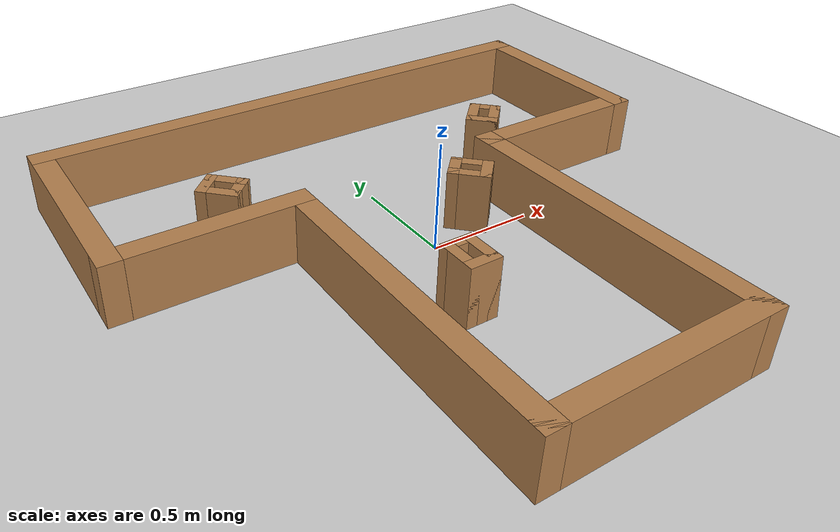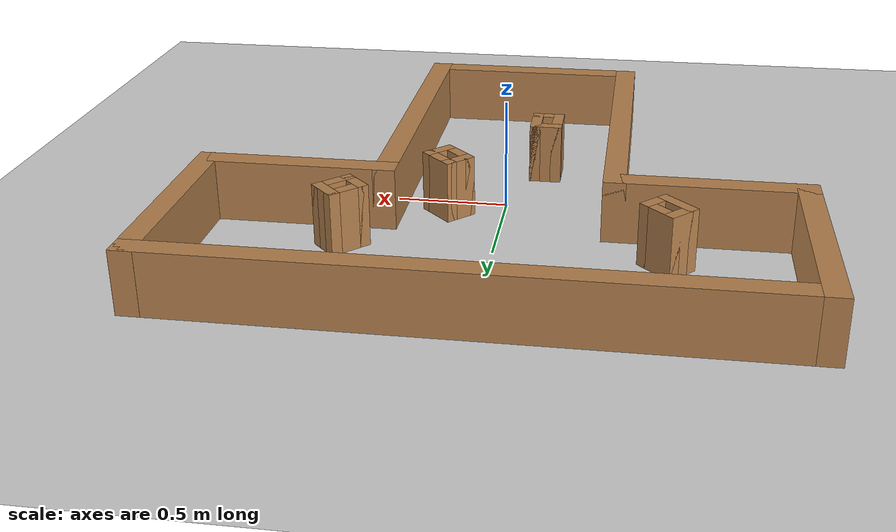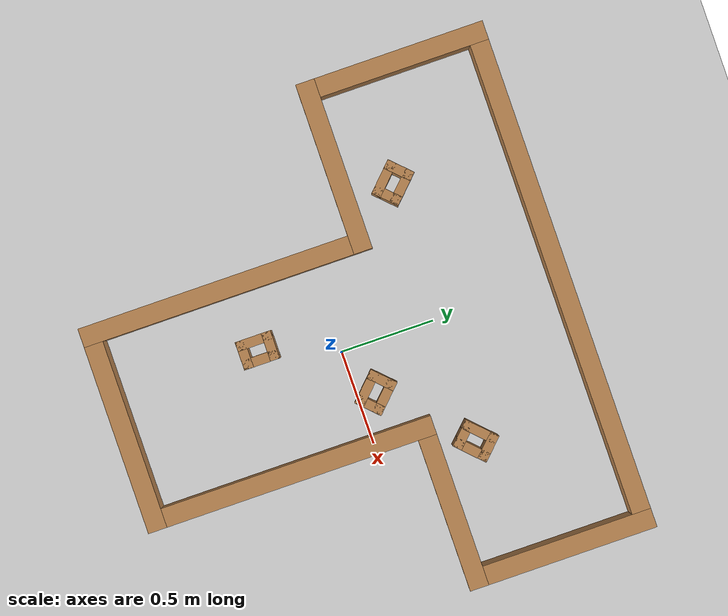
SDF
<sdf version="1.6">
 <world name="default">
  <physics type="ode">
   <real_time_update_rate>0.0</real_time_update_rate>
   <max_step_size>0.003</max_step_size>
   <ode>
    <solver>
     <type>quick</type>
     <iters>150</iters>
     <precon_iters>0</precon_iters>
     <sor>1.400000</sor>
     <use_dynamic_moi_rescaling>1</use_dynamic_moi_rescaling>
    </solver>
    <constraints>
     <cfm>0.00001</cfm>
     <erp>0.2</erp>
     <contact_max_correcting_vel>2000.000000</contact_max_correcting_vel>
     <contact_surface_layer>0.01000</contact_surface_layer>
    </constraints>
   </ode>
  </physics>
  <light name="sun" type="directional">
   <pose>0 0 10 0 -0 0</pose>
   <diffuse>0.8 0.8 0.8 1</diffuse>
   <specular>0.2 0.2 0.2 1</specular>
   <attenuation>
    <range>1000</range>
    <constant>0.9</constant>
    <linear>0.01</linear>
    <quadratic>0.001</quadratic>
   </attenuation>
   <direction>-0.5 0.1 -0.9</direction>
  </light>
  <model name="ground_plane">
   <static>1</static>
   <link name="link">
    <collision name="collision">
     <geometry><plane><normal>0 0 1</normal><size>100 100</size></plane></geometry>
     <surface><friction><ode><mu>100</mu><mu2>50</mu2></ode></friction></surface>
    </collision>
    <visual name="visual">
     <cast_shadows>0</cast_shadows>
     <geometry><plane><normal>0 0 1</normal><size>100 100</size></plane></geometry>
     <material>
      <script><uri>file://media/materials/scripts/gazebo.material</uri><name>Gazebo/Grey</name></script>
     </material>
    </visual>
   </link>
  </model>
  <gravity>0 0 -9.8</gravity>
  <magnetic_field>6e-06 2.3e-05 -4.2e-05</magnetic_field>
  <atmosphere type="adiabatic"/>
  <scene><ambient>0.4 0.4 0.4 1</ambient><background>0.7 0.7 0.7 1</background><shadows>1</shadows></scene>
  <spherical_coordinates>
   <surface_model>EARTH_WGS84</surface_model>
   <latitude_deg>0</latitude_deg>
   <longitude_deg>0</longitude_deg>
   <elevation>0</elevation>
   <heading_deg>0</heading_deg>
  </spherical_coordinates>
  <model name="stage5">
   <link name="Wall_15">
    <collision name="Wall_15_Collision">
     <geometry><box><size>0.91 0.1 0.28</size></box></geometry>
     <pose>0 0 0.14 0 -0 0</pose>
    </collision>
    <visual name="Wall_15_Visual">
     <pose>0 0 0.14 0 -0 0</pose>
     <geometry><box><size>0.91 0.1 0.28</size></box></geometry>
     <material>
      <script><uri>file://media/materials/scripts/gazebo.material</uri><name>Gazebo/Wood</name></script>
      <ambient>1 0.764706 0.305882 1</ambient>
     </material>
     <meta><layer>0</layer></meta>
    </visual>
    <pose>-0.905 0.272908 0 0 -0 0</pose>
   </link>
   <link name="Wall_17">
    <collision name="Wall_17_Collision">
     <geometry><box><size>1.55 0.1 0.28</size></box></geometry>
     <pose>0 0 0.14 0 -0 0</pose>
    </collision>
    <visual name="Wall_17_Visual">
     <pose>0 0 0.14 0 -0 0</pose>
     <geometry><box><size>1.55 0.1 0.28</size></box></geometry>
     <material>
      <script><uri>file://media/materials/scripts/gazebo.material</uri><name>Gazebo/Wood</name></script>
      <ambient>1 0.764706 0.305882 1</ambient>
     </material>
     <meta><layer>0</layer></meta>
    </visual>
    <pose>-0.5 -0.452092 0 0 -0 -1.5708</pose>
   </link>
   <link name="Wall_19">
    <collision name="Wall_19_Collision">
     <geometry><box><size>1.1 0.1 0.28</size></box></geometry>
     <pose>0 0 0.14 0 -0 0</pose>
    </collision>
    <visual name="Wall_19_Visual">
     <pose>0 0 0.14 0 -0 0</pose>
     <geometry><box><size>1.1 0.1 0.28</size></box></geometry>
     <material>
      <script><uri>file://media/materials/scripts/gazebo.material</uri><name>Gazebo/Wood</name></script>
      <ambient>1 0.764706 0.305882 1</ambient>
     </material>
     <meta><layer>0</layer></meta>
    </visual>
    <pose>-0 -1.17709 0 0 -0 0</pose>
   </link>
   <link name="Wall_21">
    <collision name="Wall_21_Collision">
     <geometry><box><size>1.55 0.1 0.28</size></box></geometry>
     <pose>0 0 0.14 0 -0 0</pose>
    </collision>
    <visual name="Wall_21_Visual">
     <pose>0 0 0.14 0 -0 0</pose>
     <geometry><box><size>1.55 0.1 0.28</size></box></geometry>
     <material>
      <script><uri>file://media/materials/scripts/gazebo.material</uri><name>Gazebo/Wood</name></script>
      <ambient>1 0.764706 0.305882 1</ambient>
     </material>
     <meta><layer>0</layer></meta>
    </visual>
    <pose>0.5 -0.452092 0 0 -0 1.5708</pose>
   </link>
   <link name="Wall_23">
    <collision name="Wall_23_Collision">
     <geometry><box><size>0.91 0.1 0.28</size></box></geometry>
     <pose>0 0 0.14 0 -0 0</pose>
    </collision>
    <visual name="Wall_23_Visual">
     <pose>0 0 0.14 0 -0 0</pose>
     <geometry><box><size>0.91 0.1 0.28</size></box></geometry>
     <material>
      <script><uri>file://media/materials/scripts/gazebo.material</uri><name>Gazebo/Wood</name></script>
      <ambient>1 0.764706 0.305882 1</ambient>
     </material>
     <meta><layer>0</layer></meta>
    </visual>
    <pose>0.905 0.272908 0 0 -0 0</pose>
   </link>
   <link name="Wall_25">
    <collision name="Wall_25_Collision">
     <geometry><box><size>1.00436 0.1 0.28</size></box></geometry>
     <pose>0 0 0.14 0 -0 0</pose>
    </collision>
    <visual name="Wall_25_Visual">
     <pose>0 0 0.14 0 -0 0</pose>
     <geometry><box><size>1.00436 0.1 0.28</size></box></geometry>
     <material>
      <script><uri>file://media/materials/scripts/gazebo.material</uri><name>Gazebo/Wood</name></script>
      <ambient>1 0.764706 0.305882 1</ambient>
     </material>
     <meta><layer>0</layer></meta>
    </visual>
    <pose>-1.31 0.724908 0 0 -0 1.5708</pose>
   </link>
   <link name="Wall_30">
    <collision name="Wall_30_Collision">
     <geometry><box><size>1.00437 0.1 0.28</size></box></geometry>
     <pose>0 0 0.14 0 -0 0</pose>
    </collision>
    <visual name="Wall_30_Visual">
     <pose>0 0 0.14 0 -0 0</pose>
     <geometry><box><size>1.00437 0.1 0.28</size></box></geometry>
     <material>
      <script><uri>file://media/materials/scripts/gazebo.material</uri><name>Gazebo/Wood</name></script>
      <ambient>1 0.764706 0.305882 1</ambient>
     </material>
     <meta><layer>0</layer></meta>
    </visual>
    <pose>1.31 0.724908 0 0 -0 1.5708</pose>
   </link>
   <link name="Wall_32">
    <collision name="Wall_32_Collision">
     <geometry><box><size>2.72 0.1 0.28</size></box></geometry>
     <pose>0 0 0.14 0 -0 0</pose>
    </collision>
    <visual name="Wall_32_Visual">
     <pose>0 0 0.14 0 -0 0</pose>
     <geometry><box><size>2.72 0.1 0.28</size></box></geometry>
     <material>
      <script><uri>file://media/materials/scripts/gazebo.material</uri><name>Gazebo/Wood</name></script>
      <ambient>1 0.764706 0.305882 1</ambient>
     </material>
     <meta><layer>0</layer></meta>
    </visual>
    <pose>-0 1.17691 0 0 -0 0</pose>
   </link>
   <static>1</static>
  </model>
  <model name="obs">
   <pose>0.25 0.1 0 0 -0 0.789999</pose>
   <link name="Wall_35">
    <collision name="Wall_35_Collision">
     <geometry><box><size>0.15 0.05 0.28</size></box></geometry>
     <pose>0 0 0.14 0 -0 0</pose>
    </collision>
    <visual name="Wall_35_Visual">
     <pose>0 0 0.14 0 -0 0</pose>
     <geometry><box><size>0.15 0.05 0.28</size></box></geometry>
     <material>
      <script><uri>file://media/materials/scripts/gazebo.material</uri><name>Gazebo/Wood</name></script>
      <ambient>1 0.764706 0.305882 1</ambient>
     </material>
     <meta><layer>0</layer></meta>
    </visual>
    <pose>0 0.07 0 0 -0 0</pose>
   </link>
   <link name="Wall_37">
    <collision name="Wall_37_Collision">
     <geometry><box><size>0.19 0.05 0.28</size></box></geometry>
     <pose>0 0 0.14 0 -0 0</pose>
    </collision>
    <visual name="Wall_37_Visual">
     <pose>0 0 0.14 0 -0 0</pose>
     <geometry><box><size>0.19 0.05 0.28</size></box></geometry>
     <material>
      <script><uri>file://media/materials/scripts/gazebo.material</uri><name>Gazebo/Wood</name></script>
      <ambient>1 0.764706 0.305882 1</ambient>
     </material>
     <meta><layer>0</layer></meta>
    </visual>
    <pose>-0.05 -0 0 0 -0 -1.5708</pose>
   </link>
   <link name="Wall_49">
    <collision name="Wall_49_Collision">
     <geometry><box><size>0.15 0.05 0.28</size></box></geometry>
     <pose>0 0 0.14 0 -0 0</pose>
    </collision>
    <visual name="Wall_49_Visual">
     <pose>0 0 0.14 0 -0 0</pose>
     <geometry><box><size>0.15 0.05 0.28</size></box></geometry>
     <material>
      <script><uri>file://media/materials/scripts/gazebo.material</uri><name>Gazebo/Wood</name></script>
      <ambient>1 0.764706 0.305882 1</ambient>
     </material>
     <meta><layer>0</layer></meta>
    </visual>
    <pose>0 -0.07 0 0 -0 0</pose>
   </link>
   <link name="Wall_51">
    <collision name="Wall_51_Collision">
     <geometry><box><size>0.19 0.05 0.28</size></box></geometry>
     <pose>0 0 0.14 0 -0 0</pose>
    </collision>
    <visual name="Wall_51_Visual">
     <pose>0 0 0.14 0 -0 0</pose>
     <geometry><box><size>0.19 0.05 0.28</size></box></geometry>
     <material>
      <script><uri>file://media/materials/scripts/gazebo.material</uri><name>Gazebo/Wood</name></script>
      <ambient>1 0.764706 0.305882 1</ambient>
     </material>
     <meta><layer>0</layer></meta>
    </visual>
    <pose>0.05 -0 0 0 -0 -1.5708</pose>
   </link>
   <static>1</static>
  </model>
  <model name="obs_0">
   <pose>-0.15 -0.4 0 0 -0 0</pose>
   <link name="Wall_35">
    <collision name="Wall_35_Collision">
     <geometry><box><size>0.15 0.05 0.28</size></box></geometry>
     <pose>0 0 0.14 0 -0 0</pose>
    </collision>
    <visual name="Wall_35_Visual">
     <pose>0 0 0.14 0 -0 0</pose>
     <geometry><box><size>0.15 0.05 0.28</size></box></geometry>
     <material>
      <script><uri>file://media/materials/scripts/gazebo.material</uri><name>Gazebo/Wood</name></script>
      <ambient>1 0.764706 0.305882 1</ambient>
     </material>
     <meta><layer>0</layer></meta>
    </visual>
    <pose>0 0.07 0 0 -0 0</pose>
   </link>
   <link name="Wall_37">
    <collision name="Wall_37_Collision">
     <geometry><box><size>0.19 0.05 0.28</size></box></geometry>
     <pose>0 0 0.14 0 -0 0</pose>
    </collision>
    <visual name="Wall_37_Visual">
     <pose>0 0 0.14 0 -0 0</pose>
     <geometry><box><size>0.19 0.05 0.28</size></box></geometry>
     <material>
      <script><uri>file://media/materials/scripts/gazebo.material</uri><name>Gazebo/Wood</name></script>
      <ambient>1 0.764706 0.305882 1</ambient>
     </material>
     <meta><layer>0</layer></meta>
    </visual>
    <pose>-0.05 -0 0 0 -0 -1.5708</pose>
   </link>
   <link name="Wall_49">
    <collision name="Wall_49_Collision">
     <geometry><box><size>0.15 0.05 0.28</size></box></geometry>
     <pose>0 0 0.14 0 -0 0</pose>
    </collision>
    <visual name="Wall_49_Visual">
     <pose>0 0 0.14 0 -0 0</pose>
     <geometry><box><size>0.15 0.05 0.28</size></box></geometry>
     <material>
      <script><uri>file://media/materials/scripts/gazebo.material</uri><name>Gazebo/Wood</name></script>
      <ambient>1 0.764706 0.305882 1</ambient>
     </material>
     <meta><layer>0</layer></meta>
    </visual>
    <pose>0 -0.07 0 0 -0 0</pose>
   </link>
   <link name="Wall_51">
    <collision name="Wall_51_Collision">
     <geometry><box><size>0.19 0.05 0.28</size></box></geometry>
     <pose>0 0 0.14 0 -0 0</pose>
    </collision>
    <visual name="Wall_51_Visual">
     <pose>0 0 0.14 0 -0 0</pose>
     <geometry><box><size>0.19 0.05 0.28</size></box></geometry>
     <material>
      <script><uri>file://media/materials/scripts/gazebo.material</uri><name>Gazebo/Wood</name></script>
      <ambient>1 0.764706 0.305882 1</ambient>
     </material>
     <meta><layer>0</layer></meta>
    </visual>
    <pose>0.05 -0 0 0 -0 -1.5708</pose>
   </link>
   <static>1</static>
  </model>
  <model name="obs_1">
   <pose>0.648356 0.5 0 0 0 -0.79</pose>
   <link name="Wall_35">
    <collision name="Wall_35_Collision">
     <geometry><box><size>0.15 0.05 0.28</size></box></geometry>
     <pose>0 0 0.14 0 -0 0</pose>
    </collision>
    <visual name="Wall_35_Visual">
     <pose>0 0 0.14 0 -0 0</pose>
     <geometry><box><size>0.15 0.05 0.28</size></box></geometry>
     <material>
      <script><uri>file://media/materials/scripts/gazebo.material</uri><name>Gazebo/Wood</name></script>
      <ambient>1 0.764706 0.305882 1</ambient>
     </material>
     <meta><layer>0</layer></meta>
    </visual>
    <pose>0 0.07 0 0 -0 0</pose>
   </link>
   <link name="Wall_37">
    <collision name="Wall_37_Collision">
     <geometry><box><size>0.19 0.05 0.28</size></box></geometry>
     <pose>0 0 0.14 0 -0 0</pose>
    </collision>
    <visual name="Wall_37_Visual">
     <pose>0 0 0.14 0 -0 0</pose>
     <geometry><box><size>0.19 0.05 0.28</size></box></geometry>
     <material>
      <script><uri>file://media/materials/scripts/gazebo.material</uri><name>Gazebo/Wood</name></script>
      <ambient>1 0.764706 0.305882 1</ambient>
     </material>
     <meta><layer>0</layer></meta>
    </visual>
    <pose>-0.05 -0 0 0 -0 -1.5708</pose>
   </link>
   <link name="Wall_49">
    <collision name="Wall_49_Collision">
     <geometry><box><size>0.15 0.05 0.28</size></box></geometry>
     <pose>0 0 0.14 0 -0 0</pose>
    </collision>
    <visual name="Wall_49_Visual">
     <pose>0 0 0.14 0 -0 0</pose>
     <geometry><box><size>0.15 0.05 0.28</size></box></geometry>
     <material>
      <script><uri>file://media/materials/scripts/gazebo.material</uri><name>Gazebo/Wood</name></script>
      <ambient>1 0.764706 0.305882 1</ambient>
     </material>
     <meta><layer>0</layer></meta>
    </visual>
    <pose>0 -0.07 0 0 -0 0</pose>
   </link>
   <link name="Wall_51">
    <collision name="Wall_51_Collision">
     <geometry><box><size>0.19 0.05 0.28</size></box></geometry>
     <pose>0 0 0.14 0 -0 0</pose>
    </collision>
    <visual name="Wall_51_Visual">
     <pose>0 0 0.14 0 -0 0</pose>
     <geometry><box><size>0.19 0.05 0.28</size></box></geometry>
     <material>
      <script><uri>file://media/materials/scripts/gazebo.material</uri><name>Gazebo/Wood</name></script>
      <ambient>1 0.764706 0.305882 1</ambient>
     </material>
     <meta><layer>0</layer></meta>
    </visual>
    <pose>0.05 -0 0 0 -0 -1.5708</pose>
   </link>
   <static>1</static>
  </model>
  <model name="obs_3">
   <pose>-0.73 0.53 0 0 -0 0.79</pose>
   <link name="Wall_35">
    <collision name="Wall_35_Collision">
     <geometry><box><size>0.15 0.05 0.28</size></box></geometry>
     <pose>0 0 0.14 0 -0 0</pose>
    </collision>
    <visual name="Wall_35_Visual">
     <pose>0 0 0.14 0 -0 0</pose>
     <geometry><box><size>0.15 0.05 0.28</size></box></geometry>
     <material>
      <script><uri>file://media/materials/scripts/gazebo.material</uri><name>Gazebo/Wood</name></script>
      <ambient>1 0.764706 0.305882 1</ambient>
     </material>
     <meta><layer>0</layer></meta>
    </visual>
    <pose>0 0.07 0 0 -0 0</pose>
   </link>
   <link name="Wall_37">
    <collision name="Wall_37_Collision">
     <geometry><box><size>0.19 0.05 0.28</size></box></geometry>
     <pose>0 0 0.14 0 -0 0</pose>
    </collision>
    <visual name="Wall_37_Visual">
     <pose>0 0 0.14 0 -0 0</pose>
     <geometry><box><size>0.19 0.05 0.28</size></box></geometry>
     <material>
      <script><uri>file://media/materials/scripts/gazebo.material</uri><name>Gazebo/Wood</name></script>
      <ambient>1 0.764706 0.305882 1</ambient>
     </material>
     <meta><layer>0</layer></meta>
    </visual>
    <pose>-0.05 -0 0 0 -0 -1.5708</pose>
   </link>
   <link name="Wall_49">
    <collision name="Wall_49_Collision">
     <geometry><box><size>0.15 0.05 0.28</size></box></geometry>
     <pose>0 0 0.14 0 -0 0</pose>
    </collision>
    <visual name="Wall_49_Visual">
     <pose>0 0 0.14 0 -0 0</pose>
     <geometry><box><size>0.15 0.05 0.28</size></box></geometry>
     <material>
      <script><uri>file://media/materials/scripts/gazebo.material</uri><name>Gazebo/Wood</name></script>
      <ambient>1 0.764706 0.305882 1</ambient>
     </material>
     <meta><layer>0</layer></meta>
    </visual>
    <pose>0 -0.07 0 0 -0 0</pose>
   </link>
   <link name="Wall_51">
    <collision name="Wall_51_Collision">
     <geometry><box><size>0.19 0.05 0.28</size></box></geometry>
     <pose>0 0 0.14 0 -0 0</pose>
    </collision>
    <visual name="Wall_51_Visual">
     <pose>0 0 0.14 0 -0 0</pose>
     <geometry><box><size>0.19 0.05 0.28</size></box></geometry>
     <material>
      <script><uri>file://media/materials/scripts/gazebo.material</uri><name>Gazebo/Wood</name></script>
      <ambient>1 0.764706 0.305882 1</ambient>
     </material>
     <meta><layer>0</layer></meta>
    </visual>
    <pose>0.05 -0 0 0 -0 -1.5708</pose>
   </link>
   <static>1</static>
  </model>
 </world>
</sdf>
